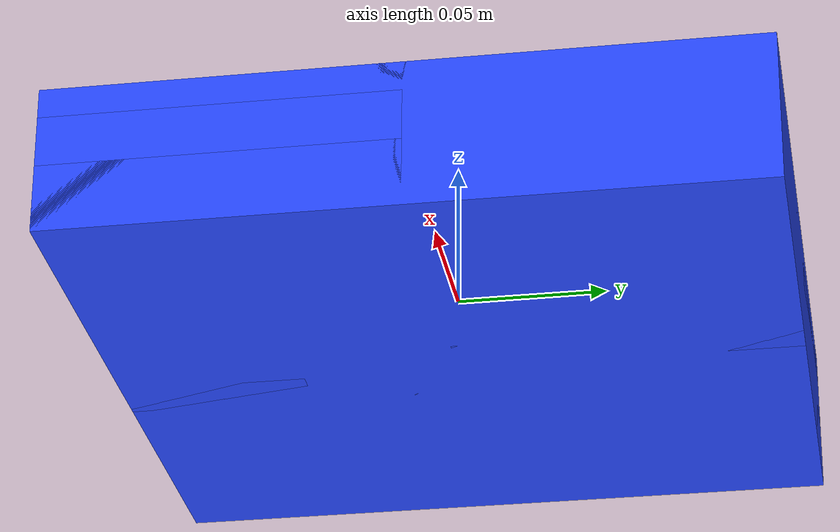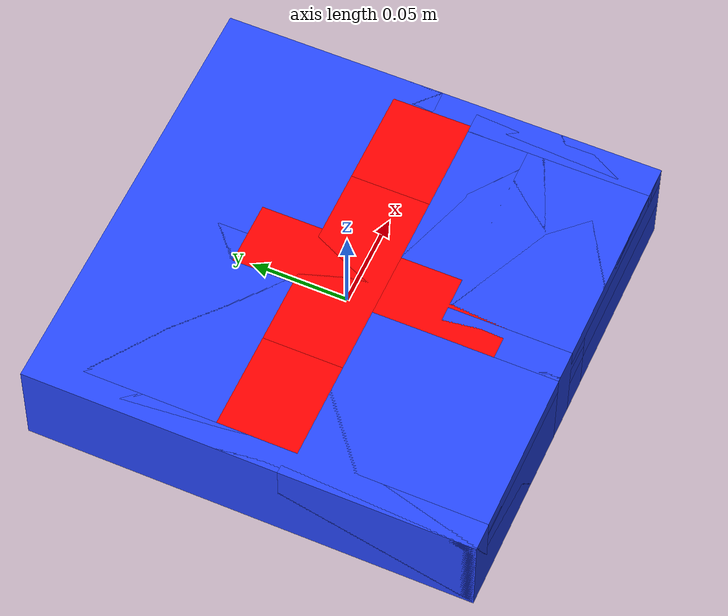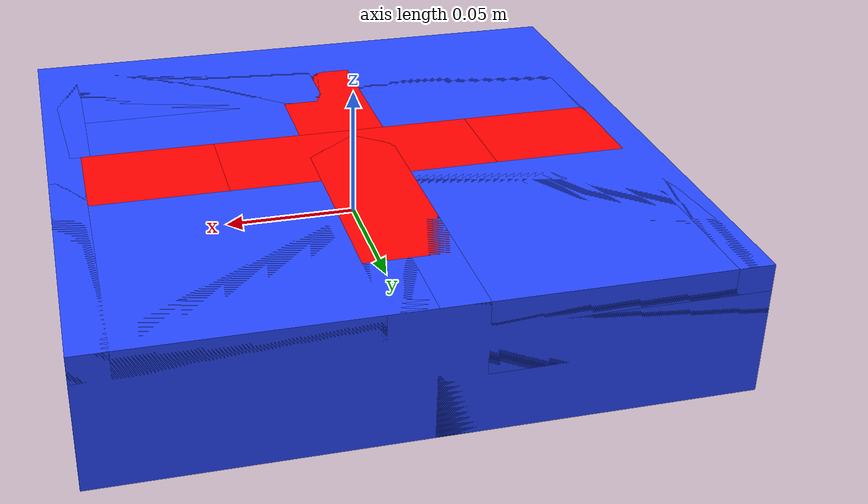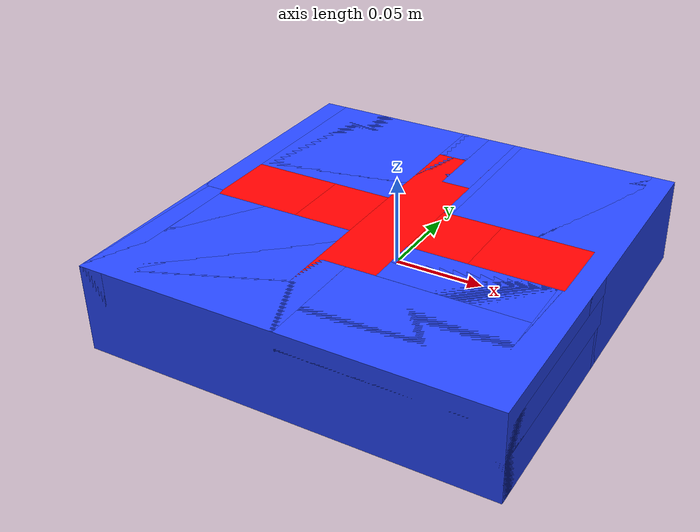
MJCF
<?xml version='1.0' encoding='utf-8'?>
<mujoco model="obj1">
  <asset>
    <mesh name="obj1" file="obj1.obj" scale="0.001 0.001 0.001" />
    <material name="mat1" rgba="0.15294 0.28235 1 1" />
    <mesh name="obj1_p0" file="obj1_part_0.obj" scale="0.001 0.001 0.001" />
    <mesh name="obj1_p1" file="obj1_part_1.obj" scale="0.001 0.001 0.001" />
    <mesh name="obj1_p2" file="obj1_part_2.obj" scale="0.001 0.001 0.001" />
    <mesh name="obj1_p3" file="obj1_part_3.obj" scale="0.001 0.001 0.001" />
    <mesh name="obj1_p4" file="obj1_part_4.obj" scale="0.001 0.001 0.001" />
    <mesh name="obj1_p5" file="obj1_part_5.obj" scale="0.001 0.001 0.001" />
    <mesh name="obj1_p6" file="obj1_part_6.obj" scale="0.001 0.001 0.001" />
    <mesh name="obj1_p7" file="obj1_part_7.obj" scale="0.001 0.001 0.001" />
    <mesh name="obj1_p8" file="obj1_part_8.obj" scale="0.001 0.001 0.001" />
    <mesh name="obj1_p9" file="obj1_part_9.obj" scale="0.001 0.001 0.001" />
    <mesh name="obj1_p10" file="obj1_part_10.obj" scale="0.001 0.001 0.001" />
    <mesh name="obj1_p11" file="obj1_part_11.obj" scale="0.001 0.001 0.001" />
    <mesh name="obj1_p12" file="obj1_part_12.obj" scale="0.001 0.001 0.001" />
    <mesh name="obj1_p13" file="obj1_part_13.obj" scale="0.001 0.001 0.001" />
    <mesh name="obj1_p14" file="obj1_part_14.obj" scale="0.001 0.001 0.001" />
    <mesh name="obj1_p15" file="obj1_part_15.obj" scale="0.001 0.001 0.001" />
    <mesh name="obj1_p16" file="obj1_part_16.obj" scale="0.001 0.001 0.001" />
    <mesh name="obj1_p17" file="obj1_part_17.obj" scale="0.001 0.001 0.001" />
    <mesh name="obj1_p18" file="obj1_part_18.obj" scale="0.001 0.001 0.001" />
    <mesh name="obj1_p19" file="obj1_part_19.obj" scale="0.001 0.001 0.001" />
    <mesh name="obj1_p20" file="obj1_part_20.obj" scale="0.001 0.001 0.001" />
    <mesh name="obj1_p21" file="obj1_part_21.obj" scale="0.001 0.001 0.001" />
    <mesh name="obj1_p22" file="obj1_part_22.obj" scale="0.001 0.001 0.001" />
    <mesh name="obj1_p23" file="obj1_part_23.obj" scale="0.001 0.001 0.001" />
    <mesh name="obj1_p24" file="obj1_part_24.obj" scale="0.001 0.001 0.001" />
  </asset>
  <worldbody>
    <body>
      <body name="object">
        <inertial pos="0 0 0" mass="0.1" diaginertia="0.0001 0.0001 0.0001" />
        <geom name="visual" mesh="obj1" type="mesh" group="1" contype="0" conaffinity="0" material="mat1" />
        <site name="bottom_site" pos="0 0 -0.025" size="0.005" rgba="0 0 0 0" />
        <site name="top_site" pos="0 0 0.025" size="0.005" rgba="0 0 0 0" />
        <site name="horizontal_radius_site" pos="0.03 0.03 0" size="0.005" rgba="0 0 0 0" />
        <site name="hole_slot_center_vertical_site" pos="0 0 0.0025" size="0.017 0.0825 0.0225" rgba="1 0 0 1" type="box" />
        <site name="hole_slot_center_horizontal_site" pos="0 0 0.020" size="0.051 0.0205 0.005" rgba="1 0 0 1" type="box" />
        <site name="hole_slot_left_horizontal_site" pos="-0.0765 0 0.020" size="0.0255 0.0205 0.005" rgba="1 0 0 1" type="box" />
        <site name="hole_slot_right_horizontal_site" pos="0.0765 0 0.020" size="0.0255 0.0205 0.005" rgba="1 0 0 1" type="box" />
        <geom name="col_0" mesh="obj1_p0" type="mesh" group="0" contype="1" conaffinity="1" friction="0.95 0.3 0.1" solimp="0.9 0.95 0.001" solref="0.02 1" condim="4" material="mat1" />
        <geom name="col_1" mesh="obj1_p1" type="mesh" group="0" contype="1" conaffinity="1" friction="0.95 0.3 0.1" solimp="0.9 0.95 0.001" solref="0.02 1" condim="4" material="mat1" />
        <geom name="col_2" mesh="obj1_p2" type="mesh" group="0" contype="1" conaffinity="1" friction="0.95 0.3 0.1" solimp="0.9 0.95 0.001" solref="0.02 1" condim="4" material="mat1" />
        <geom name="col_3" mesh="obj1_p3" type="mesh" group="0" contype="1" conaffinity="1" friction="0.95 0.3 0.1" solimp="0.9 0.95 0.001" solref="0.02 1" condim="4" material="mat1" />
        <geom name="col_4" mesh="obj1_p4" type="mesh" group="0" contype="1" conaffinity="1" friction="0.95 0.3 0.1" solimp="0.9 0.95 0.001" solref="0.02 1" condim="4" material="mat1" />
        <geom name="col_5" mesh="obj1_p5" type="mesh" group="0" contype="1" conaffinity="1" friction="0.95 0.3 0.1" solimp="0.9 0.95 0.001" solref="0.02 1" condim="4" material="mat1" />
        <geom name="col_6" mesh="obj1_p6" type="mesh" group="0" contype="1" conaffinity="1" friction="0.95 0.3 0.1" solimp="0.9 0.95 0.001" solref="0.02 1" condim="4" material="mat1" />
        <geom name="col_7" mesh="obj1_p7" type="mesh" group="0" contype="1" conaffinity="1" friction="0.95 0.3 0.1" solimp="0.9 0.95 0.001" solref="0.02 1" condim="4" material="mat1" />
        <geom name="col_8" mesh="obj1_p8" type="mesh" group="0" contype="1" conaffinity="1" friction="0.95 0.3 0.1" solimp="0.9 0.95 0.001" solref="0.02 1" condim="4" material="mat1" />
        <geom name="col_9" mesh="obj1_p9" type="mesh" group="0" contype="1" conaffinity="1" friction="0.95 0.3 0.1" solimp="0.9 0.95 0.001" solref="0.02 1" condim="4" material="mat1" />
        <geom name="col_10" mesh="obj1_p10" type="mesh" group="0" contype="1" conaffinity="1" friction="0.95 0.3 0.1" solimp="0.9 0.95 0.001" solref="0.02 1" condim="4" material="mat1" />
        <geom name="col_11" mesh="obj1_p11" type="mesh" group="0" contype="1" conaffinity="1" friction="0.95 0.3 0.1" solimp="0.9 0.95 0.001" solref="0.02 1" condim="4" material="mat1" />
        <geom name="col_12" mesh="obj1_p12" type="mesh" group="0" contype="1" conaffinity="1" friction="0.95 0.3 0.1" solimp="0.9 0.95 0.001" solref="0.02 1" condim="4" material="mat1" />
        <geom name="col_13" mesh="obj1_p13" type="mesh" group="0" contype="1" conaffinity="1" friction="0.95 0.3 0.1" solimp="0.9 0.95 0.001" solref="0.02 1" condim="4" material="mat1" />
        <geom name="col_14" mesh="obj1_p14" type="mesh" group="0" contype="1" conaffinity="1" friction="0.95 0.3 0.1" solimp="0.9 0.95 0.001" solref="0.02 1" condim="4" material="mat1" />
        <geom name="col_15" mesh="obj1_p15" type="mesh" group="0" contype="1" conaffinity="1" friction="0.95 0.3 0.1" solimp="0.9 0.95 0.001" solref="0.02 1" condim="4" material="mat1" />
        <geom name="col_16" mesh="obj1_p16" type="mesh" group="0" contype="1" conaffinity="1" friction="0.95 0.3 0.1" solimp="0.9 0.95 0.001" solref="0.02 1" condim="4" material="mat1" />
        <geom name="col_17" mesh="obj1_p17" type="mesh" group="0" contype="1" conaffinity="1" friction="0.95 0.3 0.1" solimp="0.9 0.95 0.001" solref="0.02 1" condim="4" material="mat1" />
        <geom name="col_18" mesh="obj1_p18" type="mesh" group="0" contype="1" conaffinity="1" friction="0.95 0.3 0.1" solimp="0.9 0.95 0.001" solref="0.02 1" condim="4" material="mat1" />
        <geom name="col_19" mesh="obj1_p19" type="mesh" group="0" contype="1" conaffinity="1" friction="0.95 0.3 0.1" solimp="0.9 0.95 0.001" solref="0.02 1" condim="4" material="mat1" />
        <geom name="col_20" mesh="obj1_p20" type="mesh" group="0" contype="1" conaffinity="1" friction="0.95 0.3 0.1" solimp="0.9 0.95 0.001" solref="0.02 1" condim="4" material="mat1" />
        <geom name="col_21" mesh="obj1_p21" type="mesh" group="0" contype="1" conaffinity="1" friction="0.95 0.3 0.1" solimp="0.9 0.95 0.001" solref="0.02 1" condim="4" material="mat1" />
        <geom name="col_22" mesh="obj1_p22" type="mesh" group="0" contype="1" conaffinity="1" friction="0.95 0.3 0.1" solimp="0.9 0.95 0.001" solref="0.02 1" condim="4" material="mat1" />
        <geom name="col_23" mesh="obj1_p23" type="mesh" group="0" contype="1" conaffinity="1" friction="0.95 0.3 0.1" solimp="0.9 0.95 0.001" solref="0.02 1" condim="4" material="mat1" />
        <geom name="col_24" mesh="obj1_p24" type="mesh" group="0" contype="1" conaffinity="1" friction="0.95 0.3 0.1" solimp="0.9 0.95 0.001" solref="0.02 1" condim="4" material="mat1" />
      </body>
    </body>
  </worldbody>
</mujoco>
